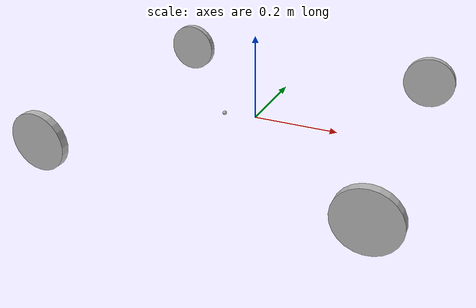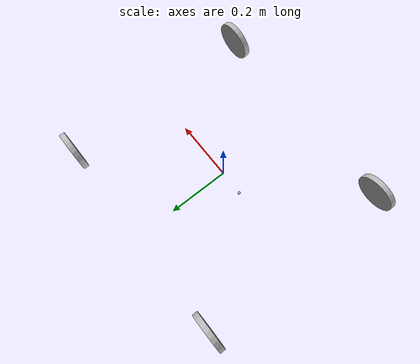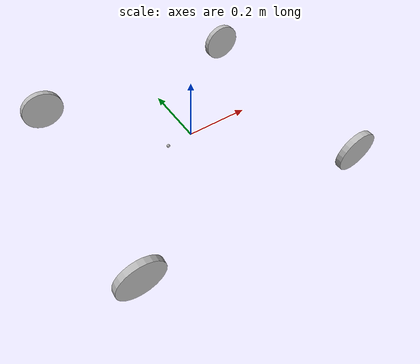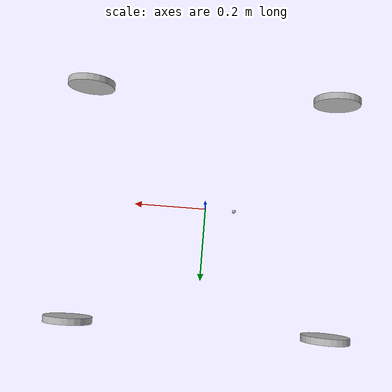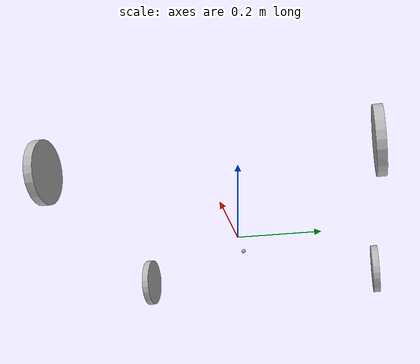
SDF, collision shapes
<?xml version="1.0" ?>
<sdf version="1.5">
  <model name="turtlebot3_burger">

    <pose>0.0 0.0 0.0 0.0 0.0 0.0</pose>

    <link name="base_footprint"/>

    <link name="base_link">
      <inertial>
        <pose>0 0 0.070 0 0 0</pose>
        <inertia>
          <ixx>7.2397393e-01</ixx>
          <ixy>4.686399e-10</ixy>
          <ixz>-1.09525703e-08</ixz>
          <iyy>7.2397393e-01</iyy>
          <iyz>2.8582649e-09</iyz>
          <izz>6.53050163e-01</izz>
        </inertia>
        <mass>8.2573504e-01</mass>
      </inertial>

      <collision name="base_collision">
        <pose>0 0 0.070 0 0 0</pose>
        <geometry>
          <box>
            <size>0.000 0.000 0.000</size>
          </box>
        </geometry>
      </collision>

      <visual name="base_visual">
        <pose>0 0 0.124 0 0 0</pose>
        <geometry>
          <mesh>
            <uri>file:///home/nmbu/Documents/thorvald2.stl</uri>
            <scale>0.005 0.005 0.005</scale>
          </mesh>
        </geometry>
      </visual>

    </link>

    <!-- Adding the spotlight -->
      <light name="user_spot_light" type="spot">
	<pose frame="">0 0 1 0 0 0</pose> <!-- Higher position: z=1 -->
	<diffuse>0.5 1.5 0.5 1</diffuse>
	<specular>0.1 0.1 0.1 1</specular>
	<direction>0 0 -1</direction>
	<attenuation>
	  <range>30</range> <!-- Increased range -->
	  <constant>0.1</constant>
	  <linear>0.01</linear>
	  <quadratic>0.001</quadratic>
	</attenuation>
	<cast_shadows>0</cast_shadows>
	<spot>
	  <inner_angle>1.0</inner_angle> <!-- Larger inner angle -->
	  <outer_angle>1.5</outer_angle> <!-- Larger outer angle -->
	  <falloff>1</falloff>
	</spot>

      </light>

    <plugin name="follow_robot_plugin" filename="libfollow_robot_plugin.so"/>

    <link name="imu_link">
      <sensor name="tb3_imu" type="imu">
        <always_on>true</always_on>
        <update_rate>200</update_rate>
        <imu>
          <angular_velocity>
            <x>
              <noise type="gaussian">
                <mean>0.0</mean>
                <stddev>2e-4</stddev>
              </noise>
            </x>
            <y>
              <noise type="gaussian">
                <mean>0.0</mean>
                <stddev>2e-4</stddev>
              </noise>
            </y>
            <z>
              <noise type="gaussian">
                <mean>0.0</mean>
                <stddev>2e-4</stddev>
              </noise>
            </z>
          </angular_velocity>
          <linear_acceleration>
            <x>
              <noise type="gaussian">
                <mean>0.0</mean>
                <stddev>1.7e-2</stddev>
              </noise>
            </x>
            <y>
              <noise type="gaussian">
                <mean>0.0</mean>
                <stddev>1.7e-2</stddev>
              </noise>
            </y>
            <z>
              <noise type="gaussian">
                <mean>0.0</mean>
                <stddev>1.7e-2</stddev>
              </noise>
            </z>
          </linear_acceleration>
        </imu>
        <plugin name="turtlebot3_imu" filename="libgazebo_ros_imu_sensor.so">
          <ros>
            <remapping>~/out:=imu</remapping>
          </ros>
        </plugin>
      </sensor>
    </link>

    <link name="wheel_left_link">
      <inertial>
        <pose>-0.35 0.33 0.023 -1.57 0 0</pose>
        <inertia>
          <ixx>1.8158194e-03</ixx>
          <ixy>-9.3392e-12</ixy>
          <ixz>1.04909e-11</ixz>
          <iyy>3.2922126e-03</iyy>
          <iyz>5.75694e-11</iyz>
          <izz>1.8158194e-03</izz>
        </inertia>
        <mass>2.8498940e-02</mass>
      </inertial>

      <collision name="wheel_left_collision">
        <pose>-0.35 0.33 0.023 -1.57 0 0</pose>
        <geometry>
          <cylinder>
            <radius>0.066</radius>
            <length>0.018</length>
          </cylinder>
        </geometry>
        <surface>
          <!-- This friction parameter doesn't contain reliable data!! -->
          <friction>
            <ode>
              <mu>100000.0</mu>
              <mu2>100000.0</mu2>
              <fdir1>0 0 0</fdir1>
              <slip1>0.0</slip1>
              <slip2>0.0</slip2>
            </ode>
          </friction>
          <contact>
            <ode>
              <soft_cfm>0</soft_cfm>
              <soft_erp>0.2</soft_erp>
              <kp>1e+5</kp>
              <kd>1</kd>
              <max_vel>0.01</max_vel>
              <min_depth>0.001</min_depth>
            </ode>
          </contact>
        </surface>
      </collision>

      <visual name="wheel_left_visual">
        <pose>-0.35 0.33 0.023 0 0 0</pose>
        <geometry>
          <mesh>
            <uri>model://turtlebot3_common/meshes/tire.dae</uri>
            <scale>0.002 0.002 0.002</scale>
          </mesh>
        </geometry>
      </visual>
    </link>

    <link name="wheel_right_link">
      <inertial>
        <pose>-0.35 -0.33 0.023 -1.57 0 0</pose>
        <inertia>
          <ixx>1.8158194e-03</ixx>
          <ixy>-9.3392e-12</ixy>
          <ixz>1.04909e-11</ixz>
          <iyy>3.2922126e-03</iyy>
          <iyz>5.75694e-11</iyz>
          <izz>1.8158194e-03</izz>
        </inertia>
        <mass>2.8498940e-02</mass>
      </inertial>

      <collision name="wheel_right_collision">
        <pose>-0.35 -0.33 0.023 -1.57 0 0</pose>
        <geometry>
          <cylinder>
            <radius>0.066</radius>
            <length>0.018</length>
          </cylinder>
        </geometry>
        <surface>
          <!-- This friction parameter doesn't contain reliable data!! -->
          <friction>
            <ode>
              <mu>100000.0</mu>
              <mu2>100000.0</mu2>
              <fdir1>0 0 0</fdir1>
              <slip1>0.0</slip1>
              <slip2>0.0</slip2>
            </ode>
          </friction>
          <contact>
            <ode>
              <soft_cfm>0</soft_cfm>
              <soft_erp>0.2</soft_erp>
              <kp>1e+5</kp>
              <kd>1</kd>
              <max_vel>0.01</max_vel>
              <min_depth>0.001</min_depth>
            </ode>
          </contact>
        </surface>
      </collision>

      <visual name="wheel_right_visual">
        <pose>-0.35 -0.33 0.023 0 0 0</pose>
        <geometry>
          <mesh>
            <uri>model://turtlebot3_common/meshes/tire.dae</uri>
            <scale>0.002 0.002 0.002</scale>
          </mesh>
        </geometry>
      </visual>
    </link>

    <link name="wheel_front_left">
      <inertial>
        <pose>0.35 0.33 0.023 -1.57 0 0</pose> <!-- Adjusted pose for front left -->
        <inertia>
          <ixx>1.8158194e-03</ixx>
          <ixy>-9.3392e-12</ixy>
          <ixz>1.04909e-11</ixz>
          <iyy>3.2922126e-03</iyy>
          <iyz>5.75694e-11</iyz>
          <izz>1.8158194e-03</izz>
        </inertia>
        <mass>2.8498940e-02</mass>
      </inertial>
      <collision name="wheel_front_left_collision">
        <pose>0.35 0.33 0.023 -1.57 0 0</pose> <!-- Adjusted pose for front left -->
        <geometry>
          <cylinder>
            <radius>0.066</radius>
            <length>0.018</length>
          </cylinder>
        </geometry>
      </collision>
      <visual name="wheel_front_left_visual">
        <pose>0.35 0.33 0.023 0 0 0</pose> <!-- Adjusted pose for front left -->
        <geometry>
          <mesh>
            <uri>model://turtlebot3_common/meshes/tire.dae</uri>
            <scale>0.002 0.002 0.002</scale>
          </mesh>
        </geometry>
      </visual>
    </link>

    <link name="wheel_front_right">
      <inertial>
        <pose>0.35 -0.33 0.023 -1.57 0 0</pose> <!-- Adjusted pose for front right -->
        <inertia>
          <ixx>1.8158194e-03</ixx>
          <ixy>-9.3392e-12</ixy>
          <ixz>1.04909e-11</ixz>
          <iyy>3.2922126e-03</iyy>
          <iyz>5.75694e-11</iyz>
          <izz>1.8158194e-03</izz>
        </inertia>
        <mass>2.8498940e-02</mass>
      </inertial>
      <collision name="wheel_front_right_collision">
        <pose>0.35 -0.33 0.023 -1.57 0 0</pose> <!-- Adjusted pose for front right -->
        <geometry>
          <cylinder>
            <radius>0.066</radius>
            <length>0.018</length>
          </cylinder>
        </geometry>
      </collision>
      <visual name="wheel_front_right_visual">
        <pose>0.35 -0.33 0.023 0 0 0</pose> <!-- Adjusted pose for front right -->
        <geometry>
          <mesh>
            <uri>model://turtlebot3_common/meshes/tire.dae</uri>
            <scale>0.002 0.002 0.002</scale>
          </mesh>
        </geometry>
      </visual>
    </link>

    <link name="caster_back_link">
      <pose>-0.081 0 -0.004 -1.57 0 0</pose>
      <inertial>
        <mass>0.005</mass>
        <inertia>
          <ixx>0.001</ixx>
          <ixy>0.000</ixy>
          <ixz>0.000</ixz>
          <iyy>0.001</iyy>
          <iyz>0.000</iyz>
          <izz>0.001</izz>
        </inertia>
      </inertial>
      <collision name="collision">
        <geometry>
          <sphere>
            <radius>0.005000</radius>
          </sphere>
        </geometry>
        <surface>
          <contact>
            <ode>
              <soft_cfm>0</soft_cfm>
              <soft_erp>0.2</soft_erp>
              <kp>1e+5</kp>
              <kd>1</kd>
              <max_vel>0.01</max_vel>
              <min_depth>0.001</min_depth>
            </ode>
          </contact>
        </surface>
      </collision>
    </link>

    <joint name="base_joint" type="fixed">
      <parent>base_footprint</parent>
      <child>base_link</child>
      <pose>0.0 0.0 0.010 0 0 0</pose>
    </joint>

    <joint name="wheel_left_joint" type="revolute">
      <parent>base_link</parent>
      <child>wheel_left_link</child>
      <pose>-0.35 0.33 0.023 -1.57 0 0</pose>
      <axis>
        <xyz>0 0 1</xyz>
      </axis>
    </joint>

    <joint name="wheel_right_joint" type="revolute">
      <parent>base_link</parent>
      <child>wheel_right_link</child>
      <pose>-0.35 -0.33 0.023 -1.57 0 0</pose>
      <axis>
        <xyz>0 0 1</xyz>
      </axis>
    </joint>

    <joint name="wheel_front_left_joint" type="revolute">
      <parent>base_link</parent>
      <child>wheel_front_left</child>
      <pose>0.35 0.33 0.023 -1.57 0 0</pose> <!-- Adjusted for front left -->
      <axis>
        <xyz>0 0 1</xyz>
      </axis>
    </joint>

    <joint name="wheel_front_right_joint" type="revolute">
      <parent>base_link</parent>
      <child>wheel_front_right</child>
      <pose>0.35 -0.33 0.023 -1.57 0 0</pose> <!-- Adjusted for front right -->
      <axis>
        <xyz>0 0 1</xyz>
      </axis>
    </joint>

    <joint name="caster_back_joint" type="ball">
      <parent>base_link</parent>
      <child>caster_back_link</child>
    </joint>

    <joint name="imu_joint" type="fixed">
      <parent>base_link</parent>
      <child>imu_link</child>
      <pose>-0.032 0 0.068 0 0 0</pose>
      <axis>
        <xyz>0 0 1</xyz>
      </axis>
    </joint>

    <!-- Plugin for the back wheels -->
    <plugin name="turtlebot3_diff_drive_back" filename="libgazebo_ros_diff_drive.so">
        <ros>
           <!-- ROS configuration -->
        </ros>
        <update_rate>30</update_rate>
        <left_joint>wheel_left_joint</left_joint>
        <right_joint>wheel_right_joint</right_joint>
        <wheel_separation>0.66</wheel_separation>
        <wheel_diameter>0.132</wheel_diameter>
        <max_wheel_torque>10</max_wheel_torque>
        <max_wheel_acceleration>1.0</max_wheel_acceleration>
        <command_topic>cmd_vel_back</command_topic>
        <publish_odom>true</publish_odom>
        <publish_odom_tf>true</publish_odom_tf>
        <odometry_topic>odom_back</odometry_topic>
        <odometry_frame>odom</odometry_frame>
        <robot_base_frame>base_footprint</robot_base_frame>
    </plugin>

    <!-- Plugin for the front wheels -->
    <plugin name="turtlebot3_diff_drive_front" filename="libgazebo_ros_diff_drive.so">
        <ros>
            <!-- ROS configuration -->
        </ros>
        <update_rate>30</update_rate>
        <left_joint>wheel_front_left_joint</left_joint>
        <right_joint>wheel_front_right_joint</right_joint>
        <wheel_separation>0.66</wheel_separation>
        <wheel_diameter>0.132</wheel_diameter>
        <max_wheel_torque>10</max_wheel_torque>
        <max_wheel_acceleration>1.0</max_wheel_acceleration>
        <command_topic>cmd_vel_front</command_topic>
        <publish_odom>true</publish_odom>
        <publish_odom_tf>true</publish_odom_tf>
        <odometry_topic>odom_front</odometry_topic>
        <odometry_frame>odom</odometry_frame>
        <robot_base_frame>base_footprint</robot_base_frame>
    </plugin>

    <plugin name="turtlebot3_joint_state" filename="libgazebo_ros_joint_state_publisher.so">
      <ros>
        <remapping>~/out:=joint_states</remapping>
      </ros>
      <update_rate>30</update_rate>
      <joint_name>wheel_left_joint</joint_name>
      <joint_name>wheel_front_left_joint</joint_name>
      <joint_name>wheel_right_joint</joint_name>
      <joint_name>wheel_front_right_joint</joint_name>
    </plugin>
  </model>
</sdf>
